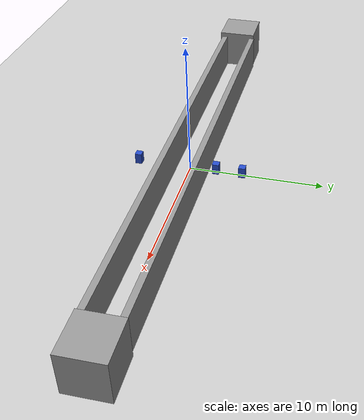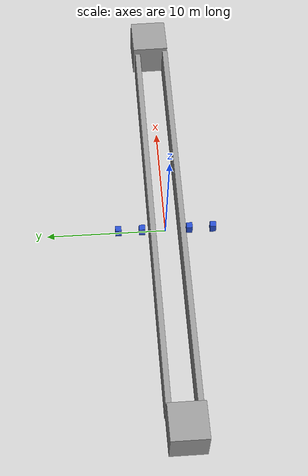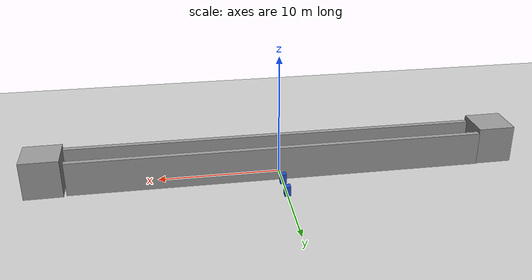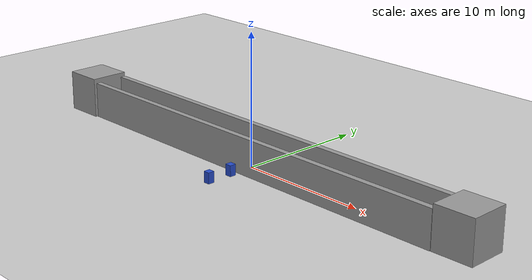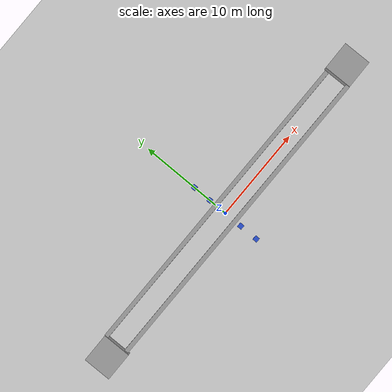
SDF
<sdf version="1.6">
 <world name="default">
  <include><uri>model://sun</uri></include>
  <include><uri>model://ground_plane</uri></include>
  <physics name="default_physics" default="0" type="ode">
   <max_step_size>0.01</max_step_size>
   <real_time_factor>1</real_time_factor>
   <real_time_update_rate>100</real_time_update_rate>
  </physics>
  <model name="my_obstacle_0">
   <pose>0 2 0.2 0 -0 0</pose>
   <link name="s_link">
    <inertial>
     <mass>1</mass>
     <inertia><ixx>1</ixx><ixy>0</ixy><ixz>0</ixz><iyy>1</iyy><iyz>0</iyz><izz>1</izz></inertia>
    </inertial>
    <collision name="collision"><geometry><box><size>.5 .5 1.2</size></box></geometry></collision>
    <visual name="visual">
     <geometry><box><size>.5 .5 1.2</size></box></geometry>
     <material>
      <script><name>Gazebo/Blue</name><uri>file://media/materials/scripts/gazebo.material</uri></script>
     </material>
    </visual>
    <kinematic>1</kinematic>
   </link>
  </model>
  <model name="my_obstacle_1">
   <pose>0 4 0.2 0 -0 0</pose>
   <link name="s_link">
    <inertial>
     <mass>1</mass>
     <inertia><ixx>1</ixx><ixy>0</ixy><ixz>0</ixz><iyy>1</iyy><iyz>0</iyz><izz>1</izz></inertia>
    </inertial>
    <collision name="collision"><geometry><box><size>.5 .5 1.2</size></box></geometry></collision>
    <visual name="visual">
     <geometry><box><size>.5 .5 1.2</size></box></geometry>
     <material>
      <script><name>Gazebo/Blue</name><uri>file://media/materials/scripts/gazebo.material</uri></script>
     </material>
    </visual>
    <kinematic>1</kinematic>
   </link>
  </model>
  <model name="my_obstacle_2">
   <pose>0 -2 0.2 0 -0 0</pose>
   <link name="s_link">
    <inertial>
     <mass>1</mass>
     <inertia><ixx>1</ixx><ixy>0</ixy><ixz>0</ixz><iyy>1</iyy><iyz>0</iyz><izz>1</izz></inertia>
    </inertial>
    <collision name="collision"><geometry><box><size>.5 .5 1.2</size></box></geometry></collision>
    <visual name="visual">
     <geometry><box><size>.5 .5 1.2</size></box></geometry>
     <material>
      <script><name>Gazebo/Blue</name><uri>file://media/materials/scripts/gazebo.material</uri></script>
     </material>
    </visual>
    <kinematic>1</kinematic>
   </link>
  </model>
  <model name="my_obstacle_3">
   <pose>0 -4 0.2 0 -0 0</pose>
   <link name="s_link">
    <inertial>
     <mass>1</mass>
     <inertia><ixx>1</ixx><ixy>0</ixy><ixz>0</ixz><iyy>1</iyy><iyz>0</iyz><izz>1</izz></inertia>
    </inertial>
    <collision name="collision"><geometry><box><size>.5 .5 1.2</size></box></geometry></collision>
    <visual name="visual">
     <geometry><box><size>.5 .5 1.2</size></box></geometry>
     <material>
      <script><name>Gazebo/Blue</name><uri>file://media/materials/scripts/gazebo.material</uri></script>
     </material>
    </visual>
    <kinematic>1</kinematic>
   </link>
  </model>
  <model name="grey_wall">
   <link name="link">
    <pose>-6.1336 -4.30581 1.4 0 -0 0</pose>
    <inertial>
     <inertia><ixx>0</ixx><ixy>0</ixy><ixz>0</ixz><iyy>0</iyy><iyz>0</iyz><izz>0</izz></inertia>
     <mass>0</mass>
    </inertial>
    <visual name="visual">
     <cast_shadows>0</cast_shadows>
     <geometry><box><size>33.8982 0.444445 2.8</size></box></geometry>
     <material>
      <script>
       <uri>model://grey_wall/materials/scripts</uri>
       <uri>model://grey_wall/materials/textures</uri>
       <name>vrc/grey_wall</name>
      </script>
      <shader type="pixel"/>
      <ambient>1 1 1 1</ambient>
      <diffuse>1 1 1 1</diffuse>
      <specular>0 0 0 1</specular>
      <emissive>0 0 0 1</emissive>
     </material>
    </visual>
    <collision name="collision">
     <geometry><box><size>33.8982 0.444445 2.8</size></box></geometry>
     <surface>
      <friction>
       <ode><mu>1</mu><mu2>1</mu2><fdir1>0 0 0</fdir1><slip1>0</slip1><slip2>0</slip2></ode>
       <torsional>
        <coefficient>1</coefficient>
        <patch_radius>0</patch_radius>
        <surface_radius>0</surface_radius>
        <use_patch_radius>1</use_patch_radius>
        <ode><slip>0</slip></ode>
       </torsional>
      </friction>
      <bounce><restitution_coefficient>0</restitution_coefficient><threshold>1e+06</threshold></bounce>
      <contact>
       <collide_without_contact>0</collide_without_contact>
       <collide_without_contact_bitmask>1</collide_without_contact_bitmask>
       <collide_bitmask>1</collide_bitmask>
       <ode>
        <soft_cfm>0</soft_cfm>
        <soft_erp>0.2</soft_erp>
        <kp>1e+13</kp>
        <kd>1</kd>
        <max_vel>0.01</max_vel>
        <min_depth>0</min_depth>
       </ode>
       <bullet>
        <split_impulse>1</split_impulse>
        <split_impulse_penetration_threshold>-0.01</split_impulse_penetration_threshold>
        <soft_cfm>0</soft_cfm>
        <soft_erp>0.2</soft_erp>
        <kp>1e+13</kp>
        <kd>1</kd>
       </bullet>
      </contact>
     </surface>
    </collision>
   </link>
   <link name="grey_wall_1">
    <pose>-5.95754 -6.7756 1.4 0 -0 0</pose>
    <inertial>
     <inertia><ixx>0</ixx><ixy>0</ixy><ixz>0</ixz><iyy>0</iyy><iyz>0</iyz><izz>0</izz></inertia>
     <mass>0</mass>
    </inertial>
    <visual name="visual">
     <cast_shadows>0</cast_shadows>
     <geometry><box><size>34.0473 0.444445 2.8</size></box></geometry>
     <material>
      <script>
       <uri>model://grey_wall/materials/scripts</uri>
       <uri>model://grey_wall/materials/textures</uri>
       <name>vrc/grey_wall</name>
      </script>
      <shader type="pixel"/>
      <ambient>1 1 1 1</ambient>
      <diffuse>1 1 1 1</diffuse>
      <specular>0 0 0 1</specular>
      <emissive>0 0 0 1</emissive>
     </material>
    </visual>
    <collision name="collision">
     <geometry><box><size>34.0473 0.444445 2.8</size></box></geometry>
     <surface>
      <friction>
       <ode><mu>1</mu><mu2>1</mu2><fdir1>0 0 0</fdir1><slip1>0</slip1><slip2>0</slip2></ode>
       <torsional>
        <coefficient>1</coefficient>
        <patch_radius>0</patch_radius>
        <surface_radius>0</surface_radius>
        <use_patch_radius>1</use_patch_radius>
        <ode><slip>0</slip></ode>
       </torsional>
      </friction>
      <bounce><restitution_coefficient>0</restitution_coefficient><threshold>1e+06</threshold></bounce>
      <contact>
       <collide_without_contact>0</collide_without_contact>
       <collide_without_contact_bitmask>1</collide_without_contact_bitmask>
       <collide_bitmask>1</collide_bitmask>
       <ode>
        <soft_cfm>0</soft_cfm>
        <soft_erp>0.2</soft_erp>
        <kp>1e+13</kp>
        <kd>1</kd>
        <max_vel>0.01</max_vel>
        <min_depth>0</min_depth>
       </ode>
       <bullet>
        <split_impulse>1</split_impulse>
        <split_impulse_penetration_threshold>-0.01</split_impulse_penetration_threshold>
        <soft_cfm>0</soft_cfm>
        <soft_erp>0.2</soft_erp>
        <kp>1e+13</kp>
        <kd>1</kd>
       </bullet>
      </contact>
     </surface>
    </collision>
   </link>
   <static>1</static>
   <pose>6.28144 5.53498 0 0 -0 0</pose>
  </model>
  <gravity>0 0 -9.8</gravity>
  <magnetic_field>6e-06 2.3e-05 -4.2e-05</magnetic_field>
  <atmosphere type="adiabatic"/>
  <scene><ambient>0.4 0.4 0.4 1</ambient><background>0.7 0.7 0.7 1</background><shadows>1</shadows></scene>
  <spherical_coordinates>
   <surface_model>EARTH_WGS84</surface_model>
   <latitude_deg>0</latitude_deg>
   <longitude_deg>0</longitude_deg>
   <elevation>0</elevation>
   <heading_deg>0</heading_deg>
  </spherical_coordinates>
  <model name="corner_box_0">
   <link name="link_0">
    <pose>0.13055 -1.5933 -1.22723 0 -0 0</pose>
    <inertial>
     <mass>29.1278</mass>
     <inertia><ixx>46.0778</ixx><ixy>0</ixy><ixz>0</ixz><iyy>46.8576</iyy><iyz>0</iyz><izz>45.0127</izz></inertia>
    </inertial>
    <visual name="visual">
     <geometry><box><size>3.07127 3.01852 3.1419</size></box></geometry>
     <material>
      <lighting>1</lighting>
      <script><uri>file://media/materials/scripts/gazebo.material</uri><name>Gazebo/Grey</name></script>
      <shader type="pixel"><normal_map>__default__</normal_map></shader>
      <ambient>0.3 0.3 0.3 1</ambient>
      <diffuse>0.7 0.7 0.7 1</diffuse>
      <specular>0.01 0.01 0.01 1</specular>
      <emissive>0 0 0 1</emissive>
     </material>
    </visual>
    <collision name="collision">
     <geometry><box><size>3.07127 3.01852 3.1419</size></box></geometry>
     <surface>
      <friction>
       <ode><mu>1</mu><mu2>1</mu2><fdir1>0 0 0</fdir1><slip1>0</slip1><slip2>0</slip2></ode>
       <torsional>
        <coefficient>1</coefficient>
        <patch_radius>0</patch_radius>
        <surface_radius>0</surface_radius>
        <use_patch_radius>1</use_patch_radius>
        <ode><slip>0</slip></ode>
       </torsional>
      </friction>
      <bounce><restitution_coefficient>0</restitution_coefficient><threshold>1e+06</threshold></bounce>
      <contact>
       <collide_without_contact>0</collide_without_contact>
       <collide_without_contact_bitmask>1</collide_without_contact_bitmask>
       <collide_bitmask>1</collide_bitmask>
       <ode>
        <soft_cfm>0</soft_cfm>
        <soft_erp>0.2</soft_erp>
        <kp>1e+13</kp>
        <kd>1</kd>
        <max_vel>0.01</max_vel>
        <min_depth>0</min_depth>
       </ode>
       <bullet>
        <split_impulse>1</split_impulse>
        <split_impulse_penetration_threshold>-0.01</split_impulse_penetration_threshold>
        <soft_cfm>0</soft_cfm>
        <soft_erp>0.2</soft_erp>
        <kp>1e+13</kp>
        <kd>1</kd>
       </bullet>
      </contact>
     </surface>
    </collision>
   </link>
   <static>0</static>
   <pose>-18.471 1.45791 2.79818 0 -0 0.007689</pose>
  </model>
  <model name="corner_box_1">
   <link name="link_0">
    <pose>0.13055 -1.5933 -1.22723 0 -0 0</pose>
    <inertial>
     <mass>29.1278</mass>
     <inertia><ixx>46.0778</ixx><ixy>0</ixy><ixz>0</ixz><iyy>46.8576</iyy><iyz>0</iyz><izz>45.0127</izz></inertia>
    </inertial>
    <visual name="visual">
     <geometry><box><size>3.07127 3.01852 3.1419</size></box></geometry>
     <material>
      <lighting>1</lighting>
      <script><uri>file://media/materials/scripts/gazebo.material</uri><name>Gazebo/Grey</name></script>
      <shader type="pixel"><normal_map>__default__</normal_map></shader>
      <ambient>0.3 0.3 0.3 1</ambient>
      <diffuse>0.7 0.7 0.7 1</diffuse>
      <specular>0.01 0.01 0.01 1</specular>
      <emissive>0 0 0 1</emissive>
     </material>
    </visual>
    <collision name="collision">
     <geometry><box><size>3.07127 3.01852 3.1419</size></box></geometry>
     <surface>
      <friction>
       <ode><mu>1</mu><mu2>1</mu2><fdir1>0 0 0</fdir1><slip1>0</slip1><slip2>0</slip2></ode>
       <torsional>
        <coefficient>1</coefficient>
        <patch_radius>0</patch_radius>
        <surface_radius>0</surface_radius>
        <use_patch_radius>1</use_patch_radius>
        <ode><slip>0</slip></ode>
       </torsional>
      </friction>
      <bounce><restitution_coefficient>0</restitution_coefficient><threshold>1e+06</threshold></bounce>
      <contact>
       <collide_without_contact>0</collide_without_contact>
       <collide_without_contact_bitmask>1</collide_without_contact_bitmask>
       <collide_bitmask>1</collide_bitmask>
       <ode>
        <soft_cfm>0</soft_cfm>
        <soft_erp>0.2</soft_erp>
        <kp>1e+13</kp>
        <kd>1</kd>
        <max_vel>0.01</max_vel>
        <min_depth>0</min_depth>
       </ode>
       <bullet>
        <split_impulse>1</split_impulse>
        <split_impulse_penetration_threshold>-0.01</split_impulse_penetration_threshold>
        <soft_cfm>0</soft_cfm>
        <soft_erp>0.2</soft_erp>
        <kp>1e+13</kp>
        <kd>1</kd>
       </bullet>
      </contact>
     </surface>
    </collision>
   </link>
   <static>0</static>
   <pose>18.7138 1.69342 2.7982 0.000243 0 0.014385</pose>
  </model>
 </world>
</sdf>
